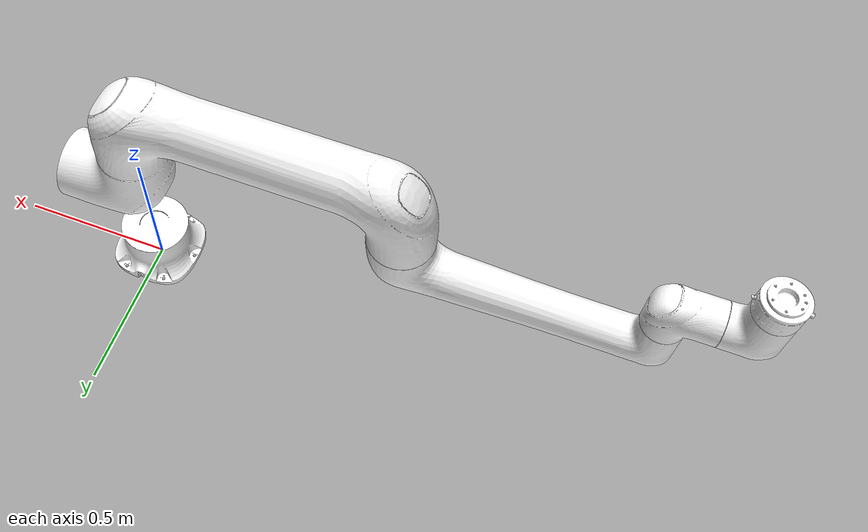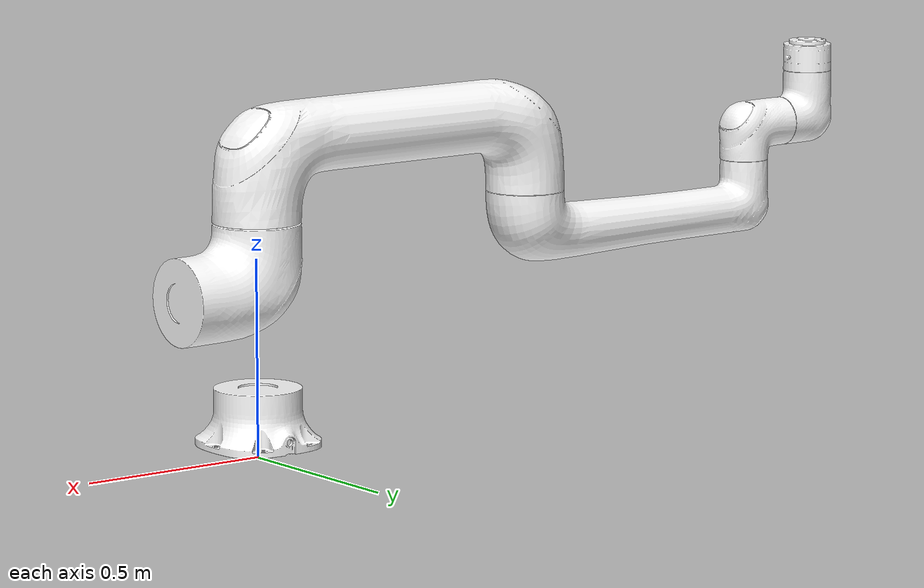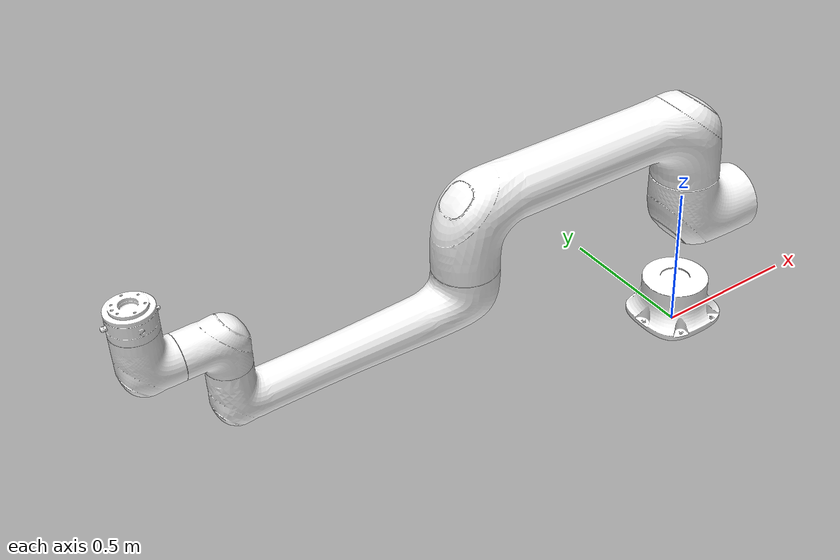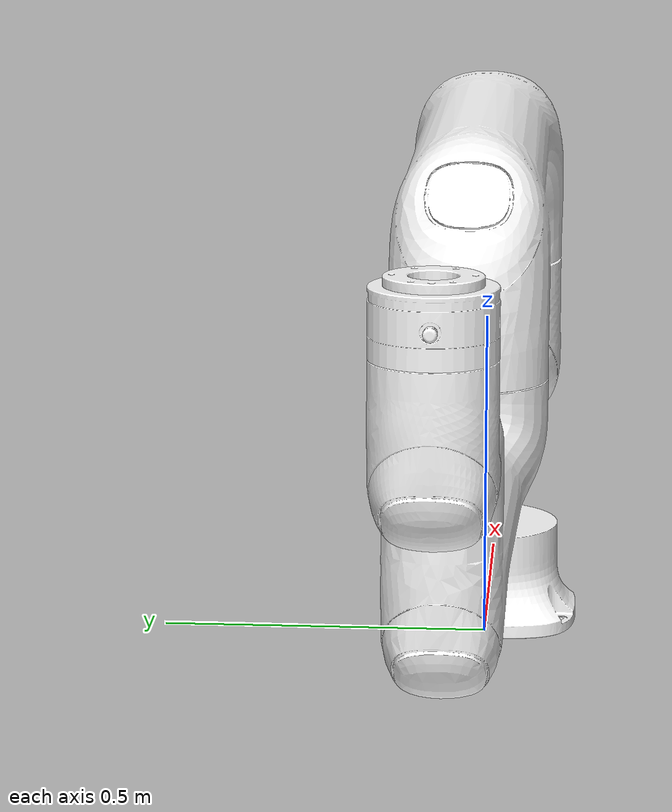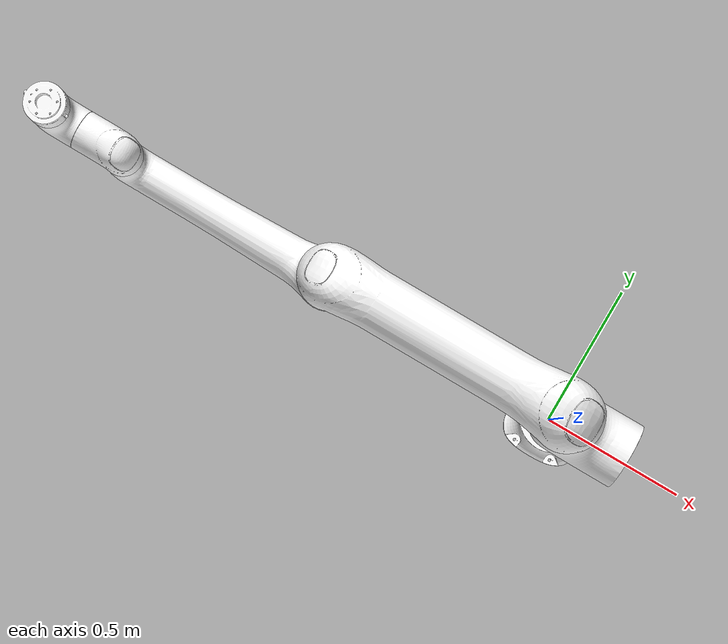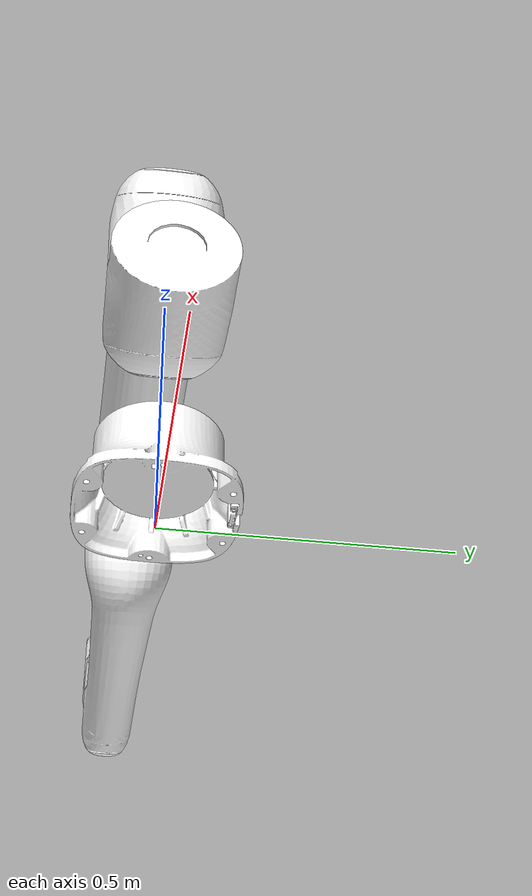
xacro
<?xml version="1.0" encoding="utf-8"?>
<robot
  name="cr30h_robot" xmlns:xacro="http://ros.org/wiki/xacro">
  <link name="dummy_link"/>
  <link
    name="base_link">
    <inertial>
      <origin
        xyz="-1.78212555854348E-05 0.00033084177723393 0.0931967971971018"
        rpy="0 0 0" />
      <mass
        value="3.62558882362798" />
      <inertia
        ixx="0.0188475732650718"
        ixy="-1.37313910460006E-06"
        ixz="-4.46309791436276E-06"
        iyy="0.0186121426737853"
        iyz="7.17633946778761E-05"
        izz="0.0272514849943692" />
    </inertial>
    <visual>
      <origin
        xyz="0 0 0"
        rpy="0 0 0" />
      <geometry>
        <mesh
          filename="file://$(find cra_description)/meshes/cr30h/base_link.STL" />
      </geometry>
      <material
        name="">
        <color
          rgba="1 1 1 1" />
      </material>
    </visual>
    <collision>
      <origin
        xyz="0 0 0"
        rpy="0 0 0" />
      <geometry>
        <mesh
          filename="file://$(find cra_description)/meshes/cr30h/base_link.STL" />
      </geometry>
    </collision>
  </link>
  <link  name="world"/>
  <joint name="world_joint" type="fixed">
    <origin xyz="0 0 0.03" rpy="0 0 0" />
    <parent link="world" />
    <child  link="dummy_link" />
  </joint>
  <joint name="dummy_joint" type="fixed">
      <parent link="dummy_link" />
      <child  link="base_link" />
    </joint>
  <link
    name="Link1">
    <inertial>
      <origin
        xyz="0.0685683156633234 6.45617962612603E-06 0.0352475118413176"
        rpy="0 0 0" />
      <mass
        value="14.4147388577882" />
      <inertia
        ixx="0.117399762147082"
        ixy="-1.3100541842346E-07"
        ixz="0.0356431430537303"
        iyy="0.187002726933162"
        iyz="6.38547998155339E-07"
        izz="0.161038602803283" />
    </inertial>
    <visual>
      <origin
        xyz="0 0 0"
        rpy="0 0 0" />
      <geometry>
        <mesh
          filename="file://$(find cra_description)/meshes/cr30h/Link1.STL" />
      </geometry>
      <material
        name="">
        <color
          rgba="1 1 1 1" />
      </material>
    </visual>
    <collision>
      <origin
        xyz="0 0 0"
        rpy="0 0 0" />
      <geometry>
        <mesh
          filename="file://$(find cra_description)/meshes/cr30h/Link1.STL" />
      </geometry>
    </collision>
  </link>
  <joint
    name="joint1"
    type="revolute">
    <origin
      xyz="0 0 0.386"
      rpy="0 0 0" />
    <parent
      link="base_link" />
    <child
      link="Link1" />
    <axis
      xyz="0 0 1" />
    <limit
      lower="-6.28"
      upper="6.28"
      effort="300"
      velocity="3.14" />
  </joint>
  <link
    name="Link2">
    <inertial>
      <origin
        xyz="-0.398905663494017 1.92684404646904E-06 0.340471375570728"
        rpy="0 0 0" />
      <mass
        value="35.1837906440538" />
      <inertia
        ixx="0.274172849710145"
        ixy="-2.79808731990376E-05"
        ixz="0.0178158997550407"
        iyy="3.75626158130774"
        iyz="7.44413946972762E-06"
        izz="3.66050132171213" />
    </inertial>
    <visual>
      <origin
        xyz="0 0 0"
        rpy="0 0 0" />
      <geometry>
        <mesh
          filename="file://$(find cra_description)/meshes/cr30h/Link2.STL" />
      </geometry>
      <material
        name="">
        <color
          rgba="1 1 1 1" />
      </material>
    </visual>
    <collision>
      <origin
        xyz="0 0 0"
        rpy="0 0 0" />
      <geometry>
        <mesh
          filename="file://$(find cra_description)/meshes/cr30h/Link2.STL" />
      </geometry>
    </collision>
  </link>
  <joint
    name="joint2"
    type="revolute">
    <origin
      xyz="0 0 0"
      rpy="0 0 0" />
    <parent
      link="Link1" />
    <child
      link="Link2" />
    <axis
      xyz="0 0 1" />
    <limit
      lower="-6.28"
      upper="6.28"
      effort="300"
      velocity="3.14" />
  </joint>
  <link
    name="Link3">
    <inertial>
      <origin
        xyz="-0.311995849028024 -2.45961873714507E-06 0.0755143467372146"
        rpy="0 0 0" />
      <mass
        value="15.319320357705" />
      <inertia
        ixx="0.0549431220959"
        ixy="-7.19675342087617E-06"
        ixz="-0.0219294614712449"
        iyy="1.16897867168856"
        iyz="1.09525212299586E-06"
        izz="1.15939372786569" />
    </inertial>
    <visual>
      <origin
        xyz="0 0 0"
        rpy="0 0 0" />
      <geometry>
        <mesh
          filename="file://$(find cra_description)/meshes/cr30h/Link3.STL" />
      </geometry>
      <material
        name="">
        <color
          rgba="1 1 1 1" />
      </material>
    </visual>
    <collision>
      <origin
        xyz="0 0 0"
        rpy="0 0 0" />
      <geometry>
        <mesh
          filename="file://$(find cra_description)/meshes/cr30h/Link3.STL" />
      </geometry>
    </collision>
  </link>
  <joint
    name="joint3"
    type="revolute">
    <origin
      xyz="-0.84 0 0"
      rpy="0 0 0" />
    <parent
      link="Link2" />
    <child
      link="Link3" />
    <axis
      xyz="1.0869E-05 -5.499E-05 -1" />
    <limit
      lower="-2.79"
      upper="2.79"
      effort="300"
      velocity="3.14" />
  </joint>
  <link
    name="Link4">
    <inertial>
      <origin
        xyz="-8.57425838810129E-07 -0.0319217802585721 -0.0137198757861597"
        rpy="0 0 0" />
      <mass
        value="2.61293279831353" />
      <inertia
        ixx="0.0104099655758254"
        ixy="4.37316634029077E-08"
        ixz="-1.41265169952098E-07"
        iyy="0.00671272940307182"
        iyz="0.00125622535616839"
        izz="0.00920549791565436" />
    </inertial>
    <visual>
      <origin
        xyz="0 0 0"
        rpy="0 0 0" />
      <geometry>
        <mesh
          filename="file://$(find cra_description)/meshes/cr30h/Link4.STL" />
      </geometry>
      <material
        name="">
        <color
          rgba="1 1 1 1" />
      </material>
    </visual>
    <collision>
      <origin
        xyz="0 0 0"
        rpy="0 0 0" />
      <geometry>
        <mesh
          filename="file://$(find cra_description)/meshes/cr30h/Link4.STL" />
      </geometry>
    </collision>
  </link>
  <joint
    name="joint4"
    type="revolute">
    <origin
      xyz="-0.74 0 0.277"
      rpy="0 0 -1.5708" />
    <parent
      link="Link3" />
    <child
      link="Link4" />
    <axis
      xyz="0 0 1" />
    <limit
      lower="-6.28"
      upper="6.28"
      effort="300"
      velocity="3.14" />
  </joint>
  <link
    name="Link5">
    <inertial>
      <origin
        xyz="8.46129739418622E-07 0.0319217771350954 -0.0137198627897681"
        rpy="0 0 0" />
      <mass
        value="2.61293334766506" />
      <inertia
        ixx="0.010409967784472"
        ixy="4.24619055119814E-08"
        ixz="1.41652897308557E-07"
        iyy="0.0067127314928378"
        iyz="-0.00125622463177166"
        izz="0.00920549783104573" />
    </inertial>
    <visual>
      <origin
        xyz="0 0 0"
        rpy="0 0 0" />
      <geometry>
        <mesh
          filename="file://$(find cra_description)/meshes/cr30h/Link5.STL" />
      </geometry>
      <material
        name="">
        <color
          rgba="1 1 1 1" />
      </material>
    </visual>
    <collision>
      <origin
        xyz="0 0 0"
        rpy="0 0 0" />
      <geometry>
        <mesh
          filename="file://$(find cra_description)/meshes/cr30h/Link5.STL" />
      </geometry>
    </collision>
  </link>
  <joint
    name="joint5"
    type="revolute">
    <origin
      xyz="0 -0.22 0"
      rpy="1.5708 0 0" />
    <parent
      link="Link4" />
    <child
      link="Link5" />
    <axis
      xyz="0 0 1" />
    <limit
      lower="-6.28"
      upper="6.28"
      effort="300"
      velocity="3.14" />
  </joint>
  <link
    name="Link6">
    <inertial>
      <origin
        xyz="-1.48486365630313E-05 -3.88625128908693E-05 -0.0440280633098416"
        rpy="0 0 0" />
      <mass
        value="0.927683989477254" />
      <inertia
        ixx="0.00138402817840661"
        ixy="-4.97862571992853E-09"
        ixz="7.27343797024477E-09"
        iyy="0.00137309138053452"
        iyz="-6.18606261796794E-07"
        izz="0.00187822403965052" />
    </inertial>
    <visual>
      <origin
        xyz="0 0 0"
        rpy="0 0 0" />
      <geometry>
        <mesh
          filename="file://$(find cra_description)/meshes/cr30h/Link6.STL" />
      </geometry>
      <material
        name="">
        <color
          rgba="1 1 1 1" />
      </material>
    </visual>
    <collision>
      <origin
        xyz="0 0 0"
        rpy="0 0 0" />
      <geometry>
        <mesh
          filename="file://$(find cra_description)/meshes/cr30h/Link6.STL" />
      </geometry>
    </collision>
  </link>
  <joint
    name="joint6"
    type="revolute">
    <origin
      xyz="0 0.211 0"
      rpy="-1.5708 0 0" />
    <parent
      link="Link5" />
    <child
      link="Link6" />
    <axis
      xyz="0 0 1" />
    <limit
      lower="-6.28"
      upper="6.28"
      effort="300"
      velocity="3.14" />
  </joint>
    <gazebo reference="Link1">
        <gravity>false</gravity>
        <selfCollide>true</selfCollide>
    </gazebo>
    <gazebo reference="Link2">
        <gravity>false</gravity>
        <selfCollide>true</selfCollide>
    </gazebo>
    <gazebo reference="Link3">
        <gravity>false</gravity>
        <selfCollide>true</selfCollide>
    </gazebo>
    <gazebo reference="Link4">
        <gravity>false</gravity>
        <selfCollide>true</selfCollide>
    </gazebo>
    <gazebo reference="Link5">
        <gravity>false</gravity>
        <selfCollide>true</selfCollide>
    </gazebo>
    <gazebo reference="Link6">
        <gravity>false</gravity>
        <selfCollide>true</selfCollide>
    </gazebo>
    <!-- 在运行demo.launch.py时，需要注释这个ros2_control节点，因为它使用了xxx.ros2_control.xacro来生成了ros2_control节点-->
    <ros2_control name="GazeboSystem" type="system">
        <hardware>
            <plugin>gz_ros2_control/GazeboSimSystem</plugin>
        </hardware>
        <joint name="joint1">
            <command_interface name="position">
                <param name="min">-1</param>
                <param name="max">1</param>
            </command_interface>
            <state_interface name="position">
                <param name="initial_value">0.0</param>
            </state_interface>
            <state_interface name="velocity"/>
        </joint>
        <joint name="joint2">
            <command_interface name="position">
                <param name="min">-1</param>
                <param name="max">1</param>
            </command_interface>
            <state_interface name="position">
                <param name="initial_value">0.0</param>
            </state_interface>
            <state_interface name="velocity"/>
        </joint>
        <joint name="joint3">
            <command_interface name="position">
                <param name="min">-1</param>
                <param name="max">1</param>
            </command_interface>
            <state_interface name="position">
                <param name="initial_value">0.0</param>
            </state_interface>
            <state_interface name="velocity"/>
        </joint>
        <joint name="joint4">
            <command_interface name="position">
                <param name="min">-1</param>
                <param name="max">1</param>
            </command_interface>
            <state_interface name="position">
                <param name="initial_value">0.0</param>
            </state_interface>
            <state_interface name="velocity"/>
        </joint>
        <joint name="joint5">
            <command_interface name="position">
                <param name="min">-1</param>
                <param name="max">1</param>
            </command_interface>
            <state_interface name="position">
                <param name="initial_value">0.0</param>
            </state_interface>
            <state_interface name="velocity"/>
        </joint>
        <joint name="joint6">
            <command_interface name="position">
                <param name="min">-1</param>
                <param name="max">1</param>
            </command_interface>
            <state_interface name="position">
                <param name="initial_value">0.0</param>
            </state_interface>
            <state_interface name="velocity"/>
        </joint>
    </ros2_control>

    <gazebo>
        <plugin filename="gz_ros2_control-system" name="gz_ros2_control::GazeboSimROS2ControlPlugin">
            <parameters>$(find cr30h_moveit)/config/ros2_controllers.yaml</parameters>
            <robot_param_node>robot_state_publisher</robot_param_node>
        </plugin>
    </gazebo>
</robot>
